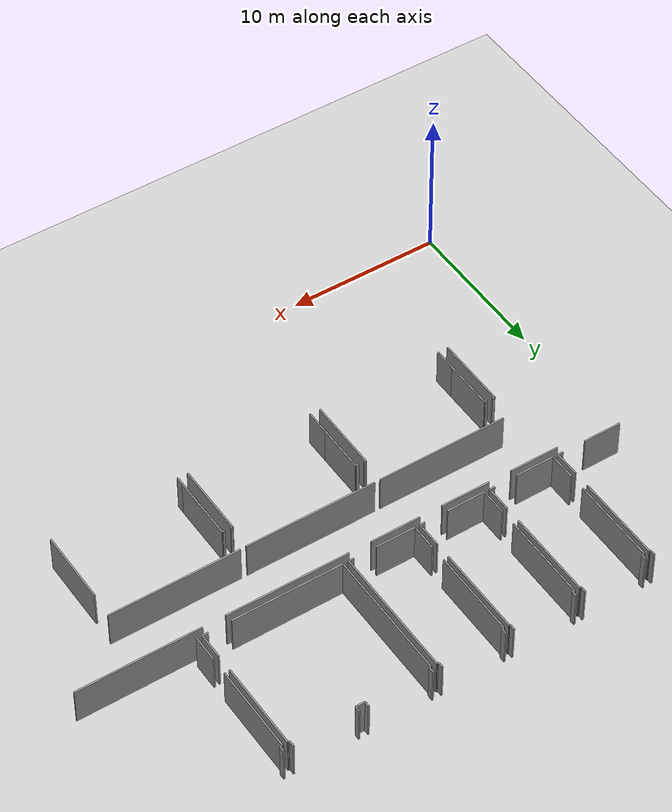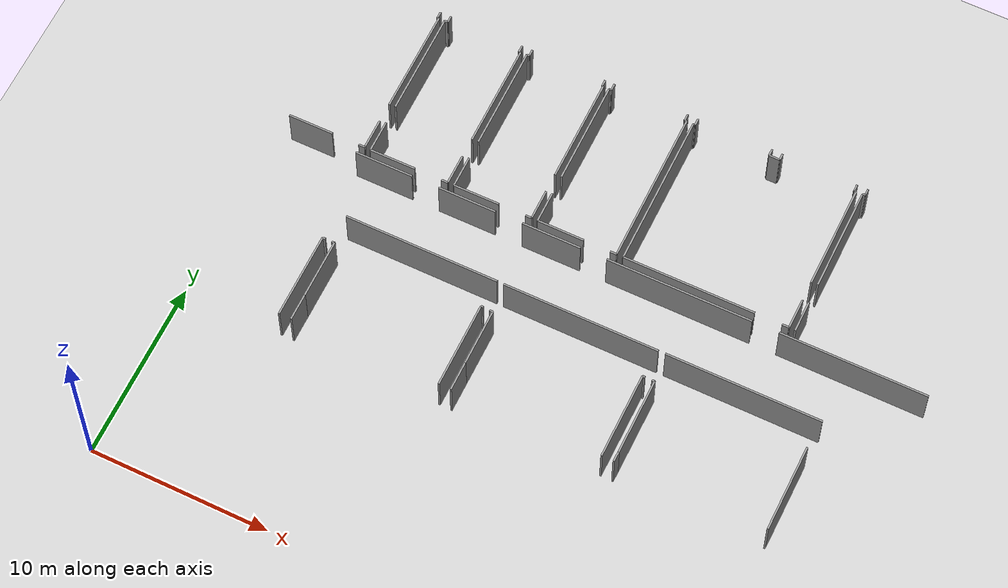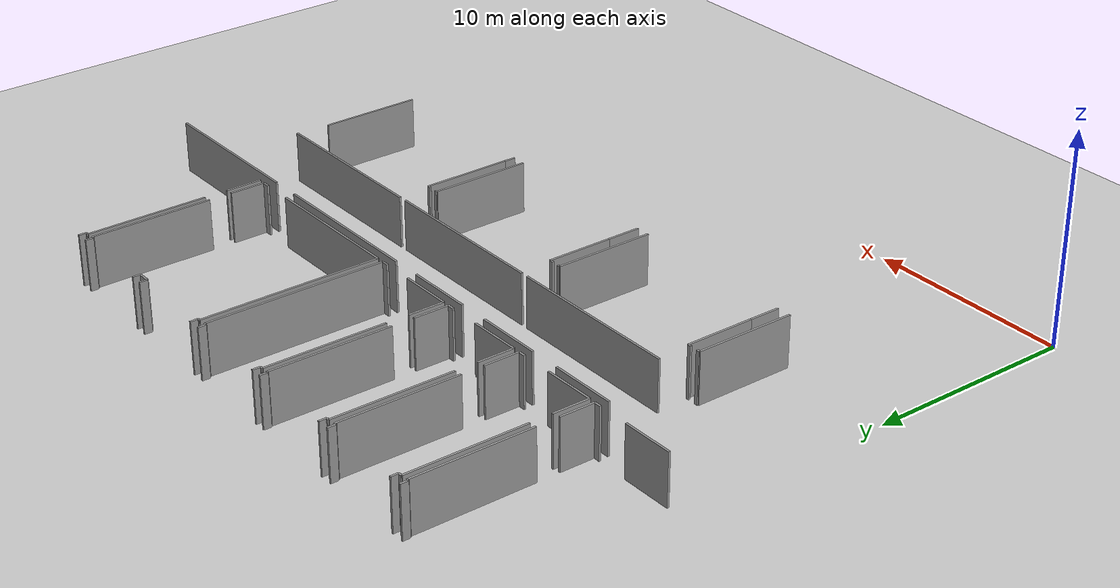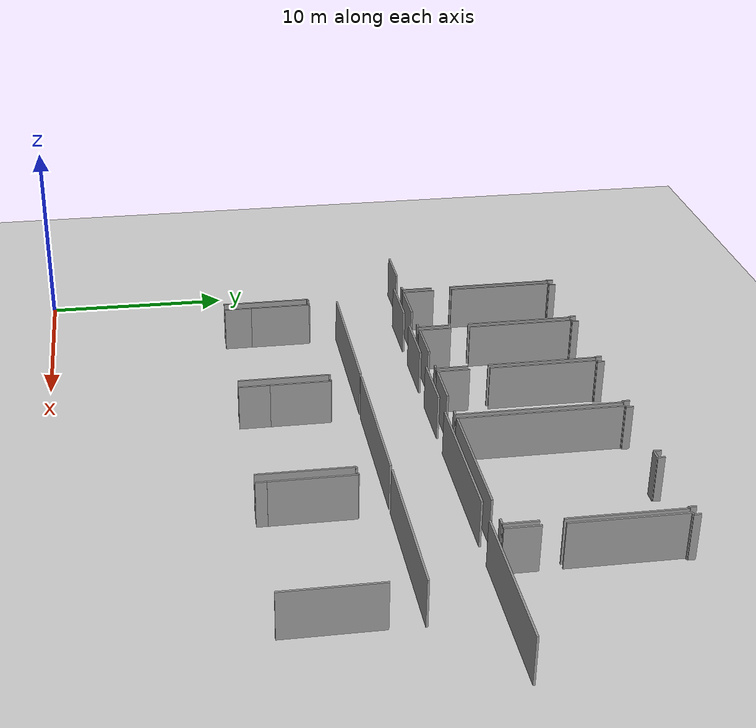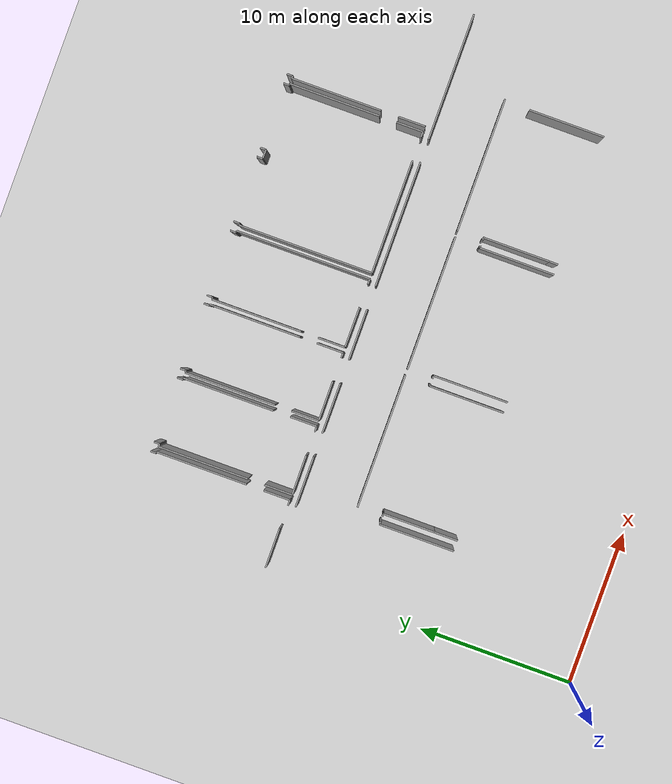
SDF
<sdf version="1.6">
 <world name="default">
  <model name="ground_plane">
   <static>1</static>
   <link name="link">
    <collision name="collision">
     <geometry><plane><normal>0 0 1</normal><size>100 100</size></plane></geometry>
     <surface><friction><ode><mu>100</mu><mu2>50</mu2></ode></friction></surface>
    </collision>
    <visual name="visual">
     <cast_shadows>0</cast_shadows>
     <geometry><plane><normal>0 0 1</normal><size>100 100</size></plane></geometry>
     <material>
      <script><uri>file://media/materials/scripts/gazebo.material</uri><name>Gazebo/Grey</name></script>
     </material>
    </visual>
   </link>
  </model>
  <model name="50010535_PLAN1">
   <static>1</static>
   <link name="Wall_320">
    <collision name="Wall_320_Collision">
     <geometry><box><size>0.16823059281 0.1 2.5</size></box></geometry>
     <pose>0.0841152964048 0 1.25 0 0 0</pose>
    </collision>
    <visual name="Wall_320_Visual">
     <pose>0.0841152964048 0 1.25 0 0 0</pose>
     <geometry><box><size>0.16823059281 0.1 2.5</size></box></geometry>
     <material>
      <script><uri>file://media/materials/scripts/gazebo.material</uri><name>Gazebo/Grey</name></script>
      <ambient>1 1 1 1</ambient>
     </material>
    </visual>
    <pose>108.410386079 -14.7562625871 0 0 0 3.14159265359</pose>
   </link>
   <link name="Wall_321">
    <collision name="Wall_321_Collision">
     <geometry><box><size>4.83955197804 0.1 2.5</size></box></geometry>
     <pose>2.41977598902 0 1.25 0 0 0</pose>
    </collision>
    <visual name="Wall_321_Visual">
     <pose>2.41977598902 0 1.25 0 0 0</pose>
     <geometry><box><size>4.83955197804 0.1 2.5</size></box></geometry>
     <material>
      <script><uri>file://media/materials/scripts/gazebo.material</uri><name>Gazebo/Grey</name></script>
      <ambient>1 1 1 1</ambient>
     </material>
    </visual>
    <pose>108.242155486 -14.7562625871 0 0 0 -1.57079632679</pose>
   </link>
   <link name="Wall_323">
    <collision name="Wall_323_Collision">
     <geometry><box><size>3.33513338373 0.1 2.5</size></box></geometry>
     <pose>1.66756669187 0 1.25 0 0 0</pose>
    </collision>
    <visual name="Wall_323_Visual">
     <pose>1.66756669187 0 1.25 0 0 0</pose>
     <geometry><box><size>3.33513338373 0.1 2.5</size></box></geometry>
     <material>
      <script><uri>file://media/materials/scripts/gazebo.material</uri><name>Gazebo/Grey</name></script>
      <ambient>1 1 1 1</ambient>
     </material>
    </visual>
    <pose>108.931595967 -18.0926665947 0 0 0 1.57079632679</pose>
   </link>
   <link name="Wall_324">
    <collision name="Wall_324_Collision">
     <geometry><box><size>0.161623348983 0.1 2.5</size></box></geometry>
     <pose>0.0808116744916 0 1.25 0 0 0</pose>
    </collision>
    <visual name="Wall_324_Visual">
     <pose>0.0808116744916 0 1.25 0 0 0</pose>
     <geometry><box><size>0.161623348983 0.1 2.5</size></box></geometry>
     <material>
      <script><uri>file://media/materials/scripts/gazebo.material</uri><name>Gazebo/Grey</name></script>
      <ambient>1 1 1 1</ambient>
     </material>
    </visual>
    <pose>108.931595967 -14.7575332109 0 0 0 3.14159265359</pose>
   </link>
   <link name="Wall_325">
    <collision name="Wall_325_Collision">
     <geometry><box><size>8.62778981341 0.1 2.5</size></box></geometry>
     <pose>4.3138949067 0 1.25 0 0 0</pose>
    </collision>
    <visual name="Wall_325_Visual">
     <pose>4.3138949067 0 1.25 0 0 0</pose>
     <geometry><box><size>8.62778981341 0.1 2.5</size></box></geometry>
     <material>
      <script><uri>file://media/materials/scripts/gazebo.material</uri><name>Gazebo/Grey</name></script>
      <ambient>1 1 1 1</ambient>
     </material>
    </visual>
    <pose>108.769972618 -13.1230027382 0 0 0 0.0</pose>
   </link>
   <link name="Wall_326">
    <collision name="Wall_326_Collision">
     <geometry><box><size>0.129857753664 0.1 2.5</size></box></geometry>
     <pose>0.0649288768321 0 1.25 0 0 0</pose>
    </collision>
    <visual name="Wall_326_Visual">
     <pose>0.0649288768321 0 1.25 0 0 0</pose>
     <geometry><box><size>0.129857753664 0.1 2.5</size></box></geometry>
     <material>
      <script><uri>file://media/materials/scripts/gazebo.material</uri><name>Gazebo/Grey</name></script>
      <ambient>1 1 1 1</ambient>
     </material>
    </visual>
    <pose>117.397762431 -14.7524507157 0 0 0 3.14159265359</pose>
   </link>
   <link name="Wall_327">
    <collision name="Wall_327_Collision">
     <geometry><box><size>4.83624835613 0.1 2.5</size></box></geometry>
     <pose>2.41812417807 0 1.25 0 0 0</pose>
    </collision>
    <visual name="Wall_327_Visual">
     <pose>2.41812417807 0 1.25 0 0 0</pose>
     <geometry><box><size>4.83624835613 0.1 2.5</size></box></geometry>
     <material>
      <script><uri>file://media/materials/scripts/gazebo.material</uri><name>Gazebo/Grey</name></script>
      <ambient>1 1 1 1</ambient>
     </material>
    </visual>
    <pose>117.267904678 -14.7524507157 0 0 0 -1.57079632679</pose>
   </link>
   <link name="Wall_328">
    <collision name="Wall_328_Collision">
     <geometry><box><size>1.49603670752 0.1 2.5</size></box></geometry>
     <pose>0.748018353758 0 1.25 0 0 0</pose>
    </collision>
    <visual name="Wall_328_Visual">
     <pose>0.748018353758 0 1.25 0 0 0</pose>
     <geometry><box><size>1.49603670752 0.1 2.5</size></box></geometry>
     <material>
      <script><uri>file://media/materials/scripts/gazebo.material</uri><name>Gazebo/Grey</name></script>
      <ambient>1 1 1 1</ambient>
     </material>
    </visual>
    <pose>108.92803822 -19.5886990718 0 0 0 1.56841820999</pose>
   </link>
   <link name="Wall_329">
    <collision name="Wall_329_Collision">
     <geometry><box><size>3.18570802335 0.1 2.5</size></box></geometry>
     <pose>1.59285401168 0 1.25 0 0 0</pose>
    </collision>
    <visual name="Wall_329_Visual">
     <pose>1.59285401168 0 1.25 0 0 0</pose>
     <geometry><box><size>3.18570802335 0.1 2.5</size></box></geometry>
     <material>
      <script><uri>file://media/materials/scripts/gazebo.material</uri><name>Gazebo/Grey</name></script>
      <ambient>1 1 1 1</ambient>
     </material>
    </visual>
    <pose>117.943622421 -17.961792342 0 0 0 1.57079632679</pose>
   </link>
   <link name="Wall_330">
    <collision name="Wall_330_Collision">
     <geometry><box><size>0.190339447152 0.1 2.5</size></box></geometry>
     <pose>0.0951697235758 0 1.25 0 0 0</pose>
    </collision>
    <visual name="Wall_330_Visual">
     <pose>0.0951697235758 0 1.25 0 0 0</pose>
     <geometry><box><size>0.190339447152 0.1 2.5</size></box></geometry>
     <material>
      <script><uri>file://media/materials/scripts/gazebo.material</uri><name>Gazebo/Grey</name></script>
      <ambient>1 1 1 1</ambient>
     </material>
    </visual>
    <pose>117.943622421 -14.7760843186 0 0 0 3.14159265359</pose>
   </link>
   <link name="Wall_331">
    <collision name="Wall_331_Collision">
     <geometry><box><size>8.66387552969 0.1 2.5</size></box></geometry>
     <pose>4.33193776485 0 1.25 0 0 0</pose>
    </collision>
    <visual name="Wall_331_Visual">
     <pose>4.33193776485 0 1.25 0 0 0</pose>
     <geometry><box><size>8.66387552969 0.1 2.5</size></box></geometry>
     <material>
      <script><uri>file://media/materials/scripts/gazebo.material</uri><name>Gazebo/Grey</name></script>
      <ambient>1 1 1 1</ambient>
     </material>
    </visual>
    <pose>117.753282974 -13.1283393582 0 0 0 0.0</pose>
   </link>
   <link name="Wall_332">
    <collision name="Wall_332_Collision">
     <geometry><box><size>0.141547492742 0.1 2.5</size></box></geometry>
     <pose>0.0707737463708 0 1.25 0 0 0</pose>
    </collision>
    <visual name="Wall_332_Visual">
     <pose>0.0707737463708 0 1.25 0 0 0</pose>
     <geometry><box><size>0.141547492742 0.1 2.5</size></box></geometry>
     <material>
      <script><uri>file://media/materials/scripts/gazebo.material</uri><name>Gazebo/Grey</name></script>
      <ambient>1 1 1 1</ambient>
     </material>
    </visual>
    <pose>126.417158504 -14.7552460881 0 0 0 3.14159265359</pose>
   </link>
   <link name="Wall_333">
    <collision name="Wall_333_Collision">
     <geometry><box><size>4.85047934283 0.1 2.5</size></box></geometry>
     <pose>2.42523967142 0 1.25 0 0 0</pose>
    </collision>
    <visual name="Wall_333_Visual">
     <pose>2.42523967142 0 1.25 0 0 0</pose>
     <geometry><box><size>4.85047934283 0.1 2.5</size></box></geometry>
     <material>
      <script><uri>file://media/materials/scripts/gazebo.material</uri><name>Gazebo/Grey</name></script>
      <ambient>1 1 1 1</ambient>
     </material>
    </visual>
    <pose>126.275611011 -14.7552460881 0 0 0 -1.57079632679</pose>
   </link>
   <link name="Wall_334">
    <collision name="Wall_334_Collision">
     <geometry><box><size>1.64393357999 0.1 2.5</size></box></geometry>
     <pose>0.821966789997 0 1.25 0 0 0</pose>
    </collision>
    <visual name="Wall_334_Visual">
     <pose>0.821966789997 0 1.25 0 0 0</pose>
     <geometry><box><size>1.64393357999 0.1 2.5</size></box></geometry>
     <material>
      <script><uri>file://media/materials/scripts/gazebo.material</uri><name>Gazebo/Grey</name></script>
      <ambient>1 1 1 1</ambient>
     </material>
    </visual>
    <pose>117.942351798 -19.6057254309 0 0 0 1.57002340996</pose>
   </link>
   <link name="Wall_335">
    <collision name="Wall_335_Collision">
     <geometry><box><size>4.30258635477 0.1 2.5</size></box></geometry>
     <pose>2.15129317739 0 1.25 0 0 0</pose>
    </collision>
    <visual name="Wall_335_Visual">
     <pose>2.15129317739 0 1.25 0 0 0</pose>
     <geometry><box><size>4.30258635477 0.1 2.5</size></box></geometry>
     <material>
      <script><uri>file://media/materials/scripts/gazebo.material</uri><name>Gazebo/Grey</name></script>
      <ambient>1 1 1 1</ambient>
     </material>
    </visual>
    <pose>126.952091129 -19.06088194 0 0 0 1.57079632679</pose>
   </link>
   <link name="Wall_336">
    <collision name="Wall_336_Collision">
     <geometry><box><size>0.158065602307 0.1 2.5</size></box></geometry>
     <pose>0.0790328011537 0 1.25 0 0 0</pose>
    </collision>
    <visual name="Wall_336_Visual">
     <pose>0.0790328011537 0 1.25 0 0 0</pose>
     <geometry><box><size>0.158065602307 0.1 2.5</size></box></geometry>
     <material>
      <script><uri>file://media/materials/scripts/gazebo.material</uri><name>Gazebo/Grey</name></script>
      <ambient>1 1 1 1</ambient>
     </material>
    </visual>
    <pose>126.952091129 -14.7582955852 0 0 0 3.14159265359</pose>
   </link>
   <link name="Wall_337">
    <collision name="Wall_337_Collision">
     <geometry><box><size>8.6033938362 0.1 2.5</size></box></geometry>
     <pose>4.3016969181 0 1.25 0 0 0</pose>
    </collision>
    <visual name="Wall_337_Visual">
     <pose>4.3016969181 0 1.25 0 0 0</pose>
     <geometry><box><size>8.6033938362 0.1 2.5</size></box></geometry>
     <material>
      <script><uri>file://media/materials/scripts/gazebo.material</uri><name>Gazebo/Grey</name></script>
      <ambient>1 1 1 1</ambient>
     </material>
    </visual>
    <pose>126.794025527 -13.1214779896 0 0 0 0.0</pose>
   </link>
   <link name="Wall_339">
    <collision name="Wall_339_Collision">
     <geometry><box><size>4.8690304505 0.1 2.5</size></box></geometry>
     <pose>2.43451522525 0 1.25 0 0 0</pose>
    </collision>
    <visual name="Wall_339_Visual">
     <pose>2.43451522525 0 1.25 0 0 0</pose>
     <geometry><box><size>4.8690304505 0.1 2.5</size></box></geometry>
     <material>
      <script><uri>file://media/materials/scripts/gazebo.material</uri><name>Gazebo/Grey</name></script>
      <ambient>1 1 1 1</ambient>
     </material>
    </visual>
    <pose>135.273406479 -14.7501635928 0 0 0 -1.57079632679</pose>
   </link>
   <link name="Wall_340">
    <collision name="Wall_340_Collision">
     <geometry><box><size>0.558357443729 0.1 2.5</size></box></geometry>
     <pose>0.279178721864 0 1.25 0 0 0</pose>
    </collision>
    <visual name="Wall_340_Visual">
     <pose>0.279178721864 0 1.25 0 0 0</pose>
     <geometry><box><size>0.558357443729 0.1 2.5</size></box></geometry>
     <material>
      <script><uri>file://media/materials/scripts/gazebo.material</uri><name>Gazebo/Grey</name></script>
      <ambient>1 1 1 1</ambient>
     </material>
    </visual>
    <pose>126.944975636 -19.6191940433 0 0 0 1.55805236495</pose>
   </link>
   <link name="Wall_507">
    <collision name="Wall_507_Collision">
     <geometry><box><size>0.369497404751 0.1 2.5</size></box></geometry>
     <pose>0.184748702375 0 1.25 0 0 0</pose>
    </collision>
    <visual name="Wall_507_Visual">
     <pose>0.184748702375 0 1.25 0 0 0</pose>
     <geometry><box><size>0.369497404751 0.1 2.5</size></box></geometry>
     <material>
      <script><uri>file://media/materials/scripts/gazebo.material</uri><name>Gazebo/Grey</name></script>
      <ambient>1 1 1 1</ambient>
     </material>
    </visual>
    <pose>107.695787247 -0.0238877276799 0 0 0 -1.57079632679</pose>
   </link>
   <link name="Wall_508">
    <collision name="Wall_508_Collision">
     <geometry><box><size>0.0825905478295 0.1 2.5</size></box></geometry>
     <pose>0.0412952739147 0 1.25 0 0 0</pose>
    </collision>
    <visual name="Wall_508_Visual">
     <pose>0.0412952739147 0 1.25 0 0 0</pose>
     <geometry><box><size>0.0825905478295 0.1 2.5</size></box></geometry>
     <material>
      <script><uri>file://media/materials/scripts/gazebo.material</uri><name>Gazebo/Grey</name></script>
      <ambient>1 1 1 1</ambient>
     </material>
    </visual>
    <pose>107.695787247 -0.393385132431 0 0 0 0.0</pose>
   </link>
   <link name="Wall_509">
    <collision name="Wall_509_Collision">
     <geometry><box><size>5.86342064637 0.1 2.5</size></box></geometry>
     <pose>2.93171032318 0 1.25 0 0 0</pose>
    </collision>
    <visual name="Wall_509_Visual">
     <pose>2.93171032318 0 1.25 0 0 0</pose>
     <geometry><box><size>5.86342064637 0.1 2.5</size></box></geometry>
     <material>
      <script><uri>file://media/materials/scripts/gazebo.material</uri><name>Gazebo/Grey</name></script>
      <ambient>1 1 1 1</ambient>
     </material>
    </visual>
    <pose>107.778377795 -0.393385132431 0 0 0 -1.57079632679</pose>
   </link>
   <link name="Wall_510">
    <collision name="Wall_510_Collision">
     <geometry><box><size>1.71153027579 0.1 2.5</size></box></geometry>
     <pose>0.855765137894 0 1.25 0 0 0</pose>
    </collision>
    <visual name="Wall_510_Visual">
     <pose>0.855765137894 0 1.25 0 0 0</pose>
     <geometry><box><size>1.71153027579 0.1 2.5</size></box></geometry>
     <material>
      <script><uri>file://media/materials/scripts/gazebo.material</uri><name>Gazebo/Grey</name></script>
      <ambient>1 1 1 1</ambient>
     </material>
    </visual>
    <pose>107.778377795 -7.36529799305 0 0 0 -1.57079632679</pose>
   </link>
   <link name="Wall_511">
    <collision name="Wall_511_Collision">
     <geometry><box><size>0.347896799934 0.1 2.5</size></box></geometry>
     <pose>0.173948399967 0 1.25 0 0 0</pose>
    </collision>
    <visual name="Wall_511_Visual">
     <pose>0.173948399967 0 1.25 0 0 0</pose>
     <geometry><box><size>0.347896799934 0.1 2.5</size></box></geometry>
     <material>
      <script><uri>file://media/materials/scripts/gazebo.material</uri><name>Gazebo/Grey</name></script>
      <ambient>1 1 1 1</ambient>
     </material>
    </visual>
    <pose>107.778377795 -9.07682826884 0 0 0 3.14159265359</pose>
   </link>
   <link name="Wall_512">
    <collision name="Wall_512_Collision">
     <geometry><box><size>2.51787681653 0.1 2.5</size></box></geometry>
     <pose>1.25893840826 0 1.25 0 0 0</pose>
    </collision>
    <visual name="Wall_512_Visual">
     <pose>1.25893840826 0 1.25 0 0 0</pose>
     <geometry><box><size>2.51787681653 0.1 2.5</size></box></geometry>
     <material>
      <script><uri>file://media/materials/scripts/gazebo.material</uri><name>Gazebo/Grey</name></script>
      <ambient>1 1 1 1</ambient>
     </material>
    </visual>
    <pose>105.893534431 -9.07682826884 0 0 0 -3.13896851751</pose>
   </link>
   <link name="Wall_513">
    <collision name="Wall_513_Collision">
     <geometry><box><size>1.80504818841 0.1 2.5</size></box></geometry>
     <pose>0.902524094204 0 1.25 0 0 0</pose>
    </collision>
    <visual name="Wall_513_Visual">
     <pose>0.902524094204 0 1.25 0 0 0</pose>
     <geometry><box><size>1.80504818841 0.1 2.5</size></box></geometry>
     <material>
      <script><uri>file://media/materials/scripts/gazebo.material</uri><name>Gazebo/Grey</name></script>
      <ambient>1 1 1 1</ambient>
     </material>
    </visual>
    <pose>108.119159101 -9.10071599652 0 0 0 1.57079632679</pose>
   </link>
   <link name="Wall_514">
    <collision name="Wall_514_Collision">
     <geometry><box><size>5.82987617771 0.1 2.5</size></box></geometry>
     <pose>2.91493808885 0 1.25 0 0 0</pose>
    </collision>
    <visual name="Wall_514_Visual">
     <pose>2.91493808885 0 1.25 0 0 0</pose>
     <geometry><box><size>5.82987617771 0.1 2.5</size></box></geometry>
     <material>
      <script><uri>file://media/materials/scripts/gazebo.material</uri><name>Gazebo/Grey</name></script>
      <ambient>1 1 1 1</ambient>
     </material>
    </visual>
    <pose>108.119159101 -6.22402368443 0 0 0 1.57079632679</pose>
   </link>
   <link name="Wall_515">
    <collision name="Wall_515_Collision">
     <geometry><box><size>0.185256951901 0.1 2.5</size></box></geometry>
     <pose>0.0926284759503 0 1.25 0 0 0</pose>
    </collision>
    <visual name="Wall_515_Visual">
     <pose>0.0926284759503 0 1.25 0 0 0</pose>
     <geometry><box><size>0.185256951901 0.1 2.5</size></box></geometry>
     <material>
      <script><uri>file://media/materials/scripts/gazebo.material</uri><name>Gazebo/Grey</name></script>
      <ambient>1 1 1 1</ambient>
     </material>
    </visual>
    <pose>108.119159101 -0.394147506718 0 0 0 0.0</pose>
   </link>
   <link name="Wall_516">
    <collision name="Wall_516_Collision">
     <geometry><box><size>0.375088149527 0.1 2.5</size></box></geometry>
     <pose>0.187544074764 0 1.25 0 0 0</pose>
    </collision>
    <visual name="Wall_516_Visual">
     <pose>0.187544074764 0 1.25 0 0 0</pose>
     <geometry><box><size>0.375088149527 0.1 2.5</size></box></geometry>
     <material>
      <script><uri>file://media/materials/scripts/gazebo.material</uri><name>Gazebo/Grey</name></script>
      <ambient>1 1 1 1</ambient>
     </material>
    </visual>
    <pose>108.304416053 -0.394147506718 0 0 0 1.57079632679</pose>
   </link>
   <link name="Wall_517">
    <collision name="Wall_517_Collision">
     <geometry><box><size>0.380170644778 0.1 2.5</size></box></geometry>
     <pose>0.190085322389 0 1.25 0 0 0</pose>
    </collision>
    <visual name="Wall_517_Visual">
     <pose>0.190085322389 0 1.25 0 0 0</pose>
     <geometry><box><size>0.380170644778 0.1 2.5</size></box></geometry>
     <material>
      <script><uri>file://media/materials/scripts/gazebo.material</uri><name>Gazebo/Grey</name></script>
      <ambient>1 1 1 1</ambient>
     </material>
    </visual>
    <pose>112.495441637 -0.0190593571914 0 0 0 -1.57079632679</pose>
   </link>
   <link name="Wall_518">
    <collision name="Wall_518_Collision">
     <geometry><box><size>0.0968215345324 0.1 2.5</size></box></geometry>
     <pose>0.0484107672662 0 1.25 0 0 0</pose>
    </collision>
    <visual name="Wall_518_Visual">
     <pose>0.0484107672662 0 1.25 0 0 0</pose>
     <geometry><box><size>0.0968215345324 0.1 2.5</size></box></geometry>
     <material>
      <script><uri>file://media/materials/scripts/gazebo.material</uri><name>Gazebo/Grey</name></script>
      <ambient>1 1 1 1</ambient>
     </material>
    </visual>
    <pose>112.495441637 -0.399230001969 0 0 0 0.0</pose>
   </link>
   <link name="Wall_519">
    <collision name="Wall_519_Collision">
     <geometry><box><size>5.86291239684 0.1 2.5</size></box></geometry>
     <pose>2.93145619842 0 1.25 0 0 0</pose>
    </collision>
    <visual name="Wall_519_Visual">
     <pose>2.93145619842 0 1.25 0 0 0</pose>
     <geometry><box><size>5.86291239684 0.1 2.5</size></box></geometry>
     <material>
      <script><uri>file://media/materials/scripts/gazebo.material</uri><name>Gazebo/Grey</name></script>
      <ambient>1 1 1 1</ambient>
     </material>
    </visual>
    <pose>112.592263172 -0.399230001969 0 0 0 -1.57079632679</pose>
   </link>
   <link name="Wall_520">
    <collision name="Wall_520_Collision">
     <geometry><box><size>1.71915401867 0.1 2.5</size></box></geometry>
     <pose>0.859577009333 0 1.25 0 0 0</pose>
    </collision>
    <visual name="Wall_520_Visual">
     <pose>0.859577009333 0 1.25 0 0 0</pose>
     <geometry><box><size>1.71915401867 0.1 2.5</size></box></geometry>
     <material>
      <script><uri>file://media/materials/scripts/gazebo.material</uri><name>Gazebo/Grey</name></script>
      <ambient>1 1 1 1</ambient>
     </material>
    </visual>
    <pose>112.592263172 -7.36733099115 0 0 0 -1.57079632679</pose>
   </link>
   <link name="Wall_521">
    <collision name="Wall_521_Collision">
     <geometry><box><size>0.363906659975 0.1 2.5</size></box></geometry>
     <pose>0.181953329987 0 1.25 0 0 0</pose>
    </collision>
    <visual name="Wall_521_Visual">
     <pose>0.181953329987 0 1.25 0 0 0</pose>
     <geometry><box><size>0.363906659975 0.1 2.5</size></box></geometry>
     <material>
      <script><uri>file://media/materials/scripts/gazebo.material</uri><name>Gazebo/Grey</name></script>
      <ambient>1 1 1 1</ambient>
     </material>
    </visual>
    <pose>112.592263172 -9.08648500982 0 0 0 3.14159265359</pose>
   </link>
   <link name="Wall_522">
    <collision name="Wall_522_Collision">
     <geometry><box><size>2.57762675125 0.1 2.5</size></box></geometry>
     <pose>1.28881337563 0 1.25 0 0 0</pose>
    </collision>
    <visual name="Wall_522_Visual">
     <pose>1.28881337563 0 1.25 0 0 0</pose>
     <geometry><box><size>2.57762675125 0.1 2.5</size></box></geometry>
     <material>
      <script><uri>file://media/materials/scripts/gazebo.material</uri><name>Gazebo/Grey</name></script>
      <ambient>1 1 1 1</ambient>
     </material>
    </visual>
    <pose>110.696746568 -9.08648500982 0 0 0 -3.13607166069</pose>
   </link>
   <link name="Wall_523">
    <collision name="Wall_523_Collision">
     <geometry><box><size>1.77734858929 0.1 2.5</size></box></geometry>
     <pose>0.888674294645 0 1.25 0 0 0</pose>
    </collision>
    <visual name="Wall_523_Visual">
     <pose>0.888674294645 0 1.25 0 0 0</pose>
     <geometry><box><size>1.77734858929 0.1 2.5</size></box></geometry>
     <material>
      <script><uri>file://media/materials/scripts/gazebo.material</uri><name>Gazebo/Grey</name></script>
      <ambient>1 1 1 1</ambient>
     </material>
    </visual>
    <pose>112.948800213 -9.0872473841 0 0 0 1.57079632679</pose>
   </link>
   <link name="Wall_524">
    <collision name="Wall_524_Collision">
     <geometry><box><size>5.84461541394 0.1 2.5</size></box></geometry>
     <pose>2.92230770697 0 1.25 0 0 0</pose>
    </collision>
    <visual name="Wall_524_Visual">
     <pose>2.92230770697 0 1.25 0 0 0</pose>
     <geometry><box><size>5.84461541394 0.1 2.5</size></box></geometry>
     <material>
      <script><uri>file://media/materials/scripts/gazebo.material</uri><name>Gazebo/Grey</name></script>
      <ambient>1 1 1 1</ambient>
     </material>
    </visual>
    <pose>112.948800213 -6.2296144292 0 0 0 1.57079632679</pose>
   </link>
   <link name="Wall_525">
    <collision name="Wall_525_Collision">
     <geometry><box><size>0.138497995591 0.1 2.5</size></box></geometry>
     <pose>0.0692489977955 0 1.25 0 0 0</pose>
    </collision>
    <visual name="Wall_525_Visual">
     <pose>0.0692489977955 0 1.25 0 0 0</pose>
     <geometry><box><size>0.138497995591 0.1 2.5</size></box></geometry>
     <material>
      <script><uri>file://media/materials/scripts/gazebo.material</uri><name>Gazebo/Grey</name></script>
      <ambient>1 1 1 1</ambient>
     </material>
    </visual>
    <pose>112.948800213 -0.384999015267 0 0 0 0.0</pose>
   </link>
   <link name="Wall_526">
    <collision name="Wall_526_Collision">
     <geometry><box><size>0.371530402851 0.1 2.5</size></box></geometry>
     <pose>0.185765201426 0 1.25 0 0 0</pose>
    </collision>
    <visual name="Wall_526_Visual">
     <pose>0.185765201426 0 1.25 0 0 0</pose>
     <geometry><box><size>0.371530402851 0.1 2.5</size></box></geometry>
     <material>
      <script><uri>file://media/materials/scripts/gazebo.material</uri><name>Gazebo/Grey</name></script>
      <ambient>1 1 1 1</ambient>
     </material>
    </visual>
    <pose>113.087298209 -0.384999015267 0 0 0 1.57079632679</pose>
   </link>
   <link name="Wall_527">
    <collision name="Wall_527_Collision">
     <geometry><box><size>0.371784527614 0.1 2.5</size></box></geometry>
     <pose>0.185892263807 0 1.25 0 0 0</pose>
    </collision>
    <visual name="Wall_527_Visual">
     <pose>0.185892263807 0 1.25 0 0 0</pose>
     <geometry><box><size>0.371784527614 0.1 2.5</size></box></geometry>
     <material>
      <script><uri>file://media/materials/scripts/gazebo.material</uri><name>Gazebo/Grey</name></script>
      <ambient>1 1 1 1</ambient>
     </material>
    </visual>
    <pose>117.327623997 -0.0134686124153 0 0 0 -1.57079632679</pose>
   </link>
   <link name="Wall_528">
    <collision name="Wall_528_Collision">
     <geometry><box><size>0.0620064420627 0.1 2.5</size></box></geometry>
     <pose>0.0310032210314 0 1.25 0 0 0</pose>
    </collision>
    <visual name="Wall_528_Visual">
     <pose>0.0310032210314 0 1.25 0 0 0</pose>
     <geometry><box><size>0.0620064420627 0.1 2.5</size></box></geometry>
     <material>
      <script><uri>file://media/materials/scripts/gazebo.material</uri><name>Gazebo/Grey</name></script>
      <ambient>1 1 1 1</ambient>
     </material>
    </visual>
    <pose>117.327623997 -0.385253140029 0 0 0 0.0</pose>
   </link>
   <link name="Wall_529">
    <collision name="Wall_529_Collision">
     <geometry><box><size>5.88146350451 0.1 2.5</size></box></geometry>
     <pose>2.94073175225 0 1.25 0 0 0</pose>
    </collision>
    <visual name="Wall_529_Visual">
     <pose>2.94073175225 0 1.25 0 0 0</pose>
     <geometry><box><size>5.88146350451 0.1 2.5</size></box></geometry>
     <material>
      <script><uri>file://media/materials/scripts/gazebo.material</uri><name>Gazebo/Grey</name></script>
      <ambient>1 1 1 1</ambient>
     </material>
    </visual>
    <pose>117.389630439 -0.385253140029 0 0 0 -1.57079632679</pose>
   </link>
   <link name="Wall_530">
    <collision name="Wall_530_Collision">
     <geometry><box><size>1.72626951202 0.1 2.5</size></box></geometry>
     <pose>0.863134756008 0 1.25 0 0 0</pose>
    </collision>
    <visual name="Wall_530_Visual">
     <pose>0.863134756008 0 1.25 0 0 0</pose>
     <geometry><box><size>1.72626951202 0.1 2.5</size></box></geometry>
     <material>
      <script><uri>file://media/materials/scripts/gazebo.material</uri><name>Gazebo/Grey</name></script>
      <ambient>1 1 1 1</ambient>
     </material>
    </visual>
    <pose>117.389630439 -7.34471388728 0 0 0 -1.57079632679</pose>
   </link>
   <link name="Wall_531">
    <collision name="Wall_531_Collision">
     <geometry><box><size>0.342814304683 0.1 2.5</size></box></geometry>
     <pose>0.171407152341 0 1.25 0 0 0</pose>
    </collision>
    <visual name="Wall_531_Visual">
     <pose>0.171407152341 0 1.25 0 0 0</pose>
     <geometry><box><size>0.342814304683 0.1 2.5</size></box></geometry>
     <material>
      <script><uri>file://media/materials/scripts/gazebo.material</uri><name>Gazebo/Grey</name></script>
      <ambient>1 1 1 1</ambient>
     </material>
    </visual>
    <pose>117.389630439 -9.0709833993 0 0 0 3.14159265359</pose>
   </link>
   <link name="Wall_532">
    <collision name="Wall_532_Collision">
     <geometry><box><size>2.56696575038 0.1 2.5</size></box></geometry>
     <pose>1.28348287519 0 1.25 0 0 0</pose>
    </collision>
    <visual name="Wall_532_Visual">
     <pose>1.28348287519 0 1.25 0 0 0</pose>
     <geometry><box><size>2.56696575038 0.1 2.5</size></box></geometry>
     <material>
      <script><uri>file://media/materials/scripts/gazebo.material</uri><name>Gazebo/Grey</name></script>
      <ambient>1 1 1 1</ambient>
     </material>
    </visual>
    <pose>115.51571444 -9.0709833993 0 0 0 -3.13525673204</pose>
   </link>
   <link name="Wall_533">
    <collision name="Wall_533_Collision">
     <geometry><box><size>1.7501572397 0.1 2.5</size></box></geometry>
     <pose>0.875078619848 0 1.25 0 0 0</pose>
    </collision>
    <visual name="Wall_533_Visual">
     <pose>0.875078619848 0 1.25 0 0 0</pose>
     <geometry><box><size>1.7501572397 0.1 2.5</size></box></geometry>
     <material>
      <script><uri>file://media/materials/scripts/gazebo.material</uri><name>Gazebo/Grey</name></script>
      <ambient>1 1 1 1</ambient>
     </material>
    </visual>
    <pose>117.730157621 -9.06996690025 0 0 0 1.57079632679</pose>
   </link>
   <link name="Wall_534">
    <collision name="Wall_534_Collision">
     <geometry><box><size>5.83317979962 0.1 2.5</size></box></geometry>
     <pose>2.91658989981 0 1.25 0 0 0</pose>
    </collision>
    <visual name="Wall_534_Visual">
     <pose>2.91658989981 0 1.25 0 0 0</pose>
     <geometry><box><size>5.83317979962 0.1 2.5</size></box></geometry>
     <material>
      <script><uri>file://media/materials/scripts/gazebo.material</uri><name>Gazebo/Grey</name></script>
      <ambient>1 1 1 1</ambient>
     </material>
    </visual>
    <pose>117.730157621 -6.2316474273 0 0 0 1.57079632679</pose>
   </link>
   <link name="Wall_535">
    <collision name="Wall_535_Collision">
     <geometry><box><size>0.135194373678 0.1 2.5</size></box></geometry>
     <pose>0.0675971868389 0 1.25 0 0 0</pose>
    </collision>
    <visual name="Wall_535_Visual">
     <pose>0.0675971868389 0 1.25 0 0 0</pose>
     <geometry><box><size>0.135194373678 0.1 2.5</size></box></geometry>
     <material>
      <script><uri>file://media/materials/scripts/gazebo.material</uri><name>Gazebo/Grey</name></script>
      <ambient>1 1 1 1</ambient>
     </material>
    </visual>
    <pose>117.730157621 -0.398467627682 0 0 0 0.0</pose>
   </link>
   <link name="Wall_536">
    <collision name="Wall_536_Collision">
     <geometry><box><size>0.38830263718 0.1 2.5</size></box></geometry>
     <pose>0.19415131859 0 1.25 0 0 0</pose>
    </collision>
    <visual name="Wall_536_Visual">
     <pose>0.19415131859 0 1.25 0 0 0</pose>
     <geometry><box><size>0.38830263718 0.1 2.5</size></box></geometry>
     <material>
      <script><uri>file://media/materials/scripts/gazebo.material</uri><name>Gazebo/Grey</name></script>
      <ambient>1 1 1 1</ambient>
     </material>
    </visual>
    <pose>117.865351995 -0.398467627682 0 0 0 1.57079632679</pose>
   </link>
   <link name="Wall_537">
    <collision name="Wall_537_Collision">
     <geometry><box><size>0.37940827049 0.1 2.5</size></box></geometry>
     <pose>0.189704135245 0 1.25 0 0 0</pose>
    </collision>
    <visual name="Wall_537_Visual">
     <pose>0.189704135245 0 1.25 0 0 0</pose>
     <geometry><box><size>0.37940827049 0.1 2.5</size></box></geometry>
     <material>
      <script><uri>file://media/materials/scripts/gazebo.material</uri><name>Gazebo/Grey</name></script>
      <ambient>1 1 1 1</ambient>
     </material>
    </visual>
    <pose>122.083568928 -0.0101649905021 0 0 0 -1.57079632679</pose>
   </link>
   <link name="Wall_538">
    <collision name="Wall_538_Collision">
     <geometry><box><size>0.118676264112 0.1 2.5</size></box></geometry>
     <pose>0.0593381320559 0 1.25 0 0 0</pose>
    </collision>
    <visual name="Wall_538_Visual">
     <pose>0.0593381320559 0 1.25 0 0 0</pose>
     <geometry><box><size>0.118676264112 0.1 2.5</size></box></geometry>
     <material>
      <script><uri>file://media/materials/scripts/gazebo.material</uri><name>Gazebo/Grey</name></script>
      <ambient>1 1 1 1</ambient>
     </material>
    </visual>
    <pose>122.083568928 -0.389573260992 0 0 0 0.0</pose>
   </link>
   <link name="Wall_539">
    <collision name="Wall_539_Collision">
     <geometry><box><size>8.68674675832 0.1 2.5</size></box></geometry>
     <pose>4.34337337916 0 1.25 0 0 0</pose>
    </collision>
    <visual name="Wall_539_Visual">
     <pose>4.34337337916 0 1.25 0 0 0</pose>
     <geometry><box><size>8.68674675832 0.1 2.5</size></box></geometry>
     <material>
      <script><uri>file://media/materials/scripts/gazebo.material</uri><name>Gazebo/Grey</name></script>
      <ambient>1 1 1 1</ambient>
     </material>
    </visual>
    <pose>122.202245192 -0.389573260992 0 0 0 -1.57079632679</pose>
   </link>
   <link name="Wall_540">
    <collision name="Wall_540_Collision">
     <geometry><box><size>0.358061790436 0.1 2.5</size></box></geometry>
     <pose>0.179030895218 0 1.25 0 0 0</pose>
    </collision>
    <visual name="Wall_540_Visual">
     <pose>0.179030895218 0 1.25 0 0 0</pose>
     <geometry><box><size>0.358061790436 0.1 2.5</size></box></geometry>
     <material>
      <script><uri>file://media/materials/scripts/gazebo.material</uri><name>Gazebo/Grey</name></script>
      <ambient>1 1 1 1</ambient>
     </material>
    </visual>
    <pose>122.202245192 -9.07632001931 0 0 0 3.14159265359</pose>
   </link>
   <link name="Wall_541">
    <collision name="Wall_541_Collision">
     <geometry><box><size>2.61647626832 0.1 2.5</size></box></geometry>
     <pose>1.30823813416 0 1.25 0 0 0</pose>
    </collision>
    <visual name="Wall_541_Visual">
     <pose>1.30823813416 0 1.25 0 0 0</pose>
     <geometry><box><size>2.61647626832 0.1 2.5</size></box></geometry>
     <material>
      <script><uri>file://media/materials/scripts/gazebo.material</uri><name>Gazebo/Grey</name></script>
      <ambient>1 1 1 1</ambient>
     </material>
    </visual>
    <pose>120.346626176 -9.07632001931 0 0 0 3.13916453093</pose>
   </link>
   <link name="Wall_542">
    <collision name="Wall_542_Collision">
     <geometry><box><size>8.67302402114 0.1 2.5</size></box></geometry>
     <pose>4.33651201057 0 1.25 0 0 0</pose>
    </collision>
    <visual name="Wall_542_Visual">
     <pose>4.33651201057 0 1.25 0 0 0</pose>
     <geometry><box><size>8.67302402114 0.1 2.5</size></box></geometry>
     <material>
      <script><uri>file://media/materials/scripts/gazebo.material</uri><name>Gazebo/Grey</name></script>
      <ambient>1 1 1 1</ambient>
     </material>
    </visual>
    <pose>122.577587467 -9.07199989835 0 0 0 1.57079632679</pose>
   </link>
   <link name="Wall_543">
    <collision name="Wall_543_Collision">
     <geometry><box><size>0.109273647897 0.1 2.5</size></box></geometry>
     <pose>0.0546368239487 0 1.25 0 0 0</pose>
    </collision>
    <visual name="Wall_543_Visual">
     <pose>0.0546368239487 0 1.25 0 0 0</pose>
     <geometry><box><size>0.109273647897 0.1 2.5</size></box></geometry>
     <material>
      <script><uri>file://media/materials/scripts/gazebo.material</uri><name>Gazebo/Grey</name></script>
      <ambient>1 1 1 1</ambient>
     </material>
    </visual>
    <pose>122.577587467 -0.398975877207 0 0 0 0.0</pose>
   </link>
   <link name="Wall_544">
    <collision name="Wall_544_Collision">
     <geometry><box><size>0.394147506718 0.1 2.5</size></box></geometry>
     <pose>0.197073753359 0 1.25 0 0 0</pose>
    </collision>
    <visual name="Wall_544_Visual">
     <pose>0.197073753359 0 1.25 0 0 0</pose>
     <geometry><box><size>0.394147506718 0.1 2.5</size></box></geometry>
     <material>
      <script><uri>file://media/materials/scripts/gazebo.material</uri><name>Gazebo/Grey</name></script>
      <ambient>1 1 1 1</ambient>
     </material>
    </visual>
    <pose>122.686861114 -0.398975877207 0 0 0 1.57079632679</pose>
   </link>
   <link name="Wall_545">
    <collision name="Wall_545_Collision">
     <geometry><box><size>0.384744890504 0.1 2.5</size></box></geometry>
     <pose>0.192372445252 0 1.25 0 0 0</pose>
    </collision>
    <visual name="Wall_545_Visual">
     <pose>0.192372445252 0 1.25 0 0 0</pose>
     <geometry><box><size>0.384744890504 0.1 2.5</size></box></geometry>
     <material>
      <script><uri>file://media/materials/scripts/gazebo.material</uri><name>Gazebo/Grey</name></script>
      <ambient>1 1 1 1</ambient>
     </material>
    </visual>
    <pose>126.895167182 -0.00482837048849 0 0 0 -1.57079632679</pose>
   </link>
   <link name="Wall_546">
    <collision name="Wall_546_Collision">
     <geometry><box><size>0.593635445322 0.1 2.5</size></box></geometry>
     <pose>0.296817722661 0 1.25 0 0 0</pose>
    </collision>
    <visual name="Wall_546_Visual">
     <pose>0.296817722661 0 1.25 0 0 0</pose>
     <geometry><box><size>0.593635445322 0.1 2.5</size></box></geometry>
     <material>
      <script><uri>file://media/materials/scripts/gazebo.material</uri><name>Gazebo/Grey</name></script>
      <ambient>1 1 1 1</ambient>
     </material>
    </visual>
    <pose>126.895167182 -0.389573260992 0 0 0 0.0</pose>
   </link>
   <link name="Wall_547">
    <collision name="Wall_547_Collision">
     <geometry><box><size>0.370513903801 0.1 2.5</size></box></geometry>
     <pose>0.185256951901 0 1.25 0 0 0</pose>
    </collision>
    <visual name="Wall_547_Visual">
     <pose>0.185256951901 0 1.25 0 0 0</pose>
     <geometry><box><size>0.370513903801 0.1 2.5</size></box></geometry>
     <material>
      <script><uri>file://media/materials/scripts/gazebo.material</uri><name>Gazebo/Grey</name></script>
      <ambient>1 1 1 1</ambient>
     </material>
    </visual>
    <pose>127.488802628 -0.389573260992 0 0 0 1.57079632679</pose>
   </link>
   <link name="Wall_548">
    <collision name="Wall_548_Collision">
     <geometry><box><size>0.375088149527 0.1 2.5</size></box></geometry>
     <pose>0.187544074764 0 1.25 0 0 0</pose>
    </collision>
    <visual name="Wall_548_Visual">
     <pose>0.187544074764 0 1.25 0 0 0</pose>
     <geometry><box><size>0.375088149527 0.1 2.5</size></box></geometry>
     <material>
      <script><uri>file://media/materials/scripts/gazebo.material</uri><name>Gazebo/Grey</name></script>
      <ambient>1 1 1 1</ambient>
     </material>
    </visual>
    <pose>131.687706079 -0.0190593571914 0 0 0 -1.57079632679</pose>
   </link>
   <link name="Wall_549">
    <collision name="Wall_549_Collision">
     <geometry><box><size>0.113847893623 0.1 2.5</size></box></geometry>
     <pose>0.0569239468117 0 1.25 0 0 0</pose>
    </collision>
    <visual name="Wall_549_Visual">
     <pose>0.0569239468117 0 1.25 0 0 0</pose>
     <geometry><box><size>0.113847893623 0.1 2.5</size></box></geometry>
     <material>
      <script><uri>file://media/materials/scripts/gazebo.material</uri><name>Gazebo/Grey</name></script>
      <ambient>1 1 1 1</ambient>
     </material>
    </visual>
    <pose>131.687706079 -0.394147506718 0 0 0 0.0</pose>
   </link>
   <link name="Wall_550">
    <collision name="Wall_550_Collision">
     <geometry><box><size>5.84232829107 0.1 2.5</size></box></geometry>
     <pose>2.92116414554 0 1.25 0 0 0</pose>
    </collision>
    <visual name="Wall_550_Visual">
     <pose>2.92116414554 0 1.25 0 0 0</pose>
     <geometry><box><size>5.84232829107 0.1 2.5</size></box></geometry>
     <material>
      <script><uri>file://media/materials/scripts/gazebo.material</uri><name>Gazebo/Grey</name></script>
      <ambient>1 1 1 1</ambient>
     </material>
    </visual>
    <pose>131.801553973 -0.394147506718 0 0 0 -1.57079632679</pose>
   </link>
   <link name="Wall_551">
    <collision name="Wall_551_Collision">
     <geometry><box><size>1.71229265008 0.1 2.5</size></box></geometry>
     <pose>0.856146325038 0 1.25 0 0 0</pose>
    </collision>
    <visual name="Wall_551_Visual">
     <pose>0.856146325038 0 1.25 0 0 0</pose>
     <geometry><box><size>1.71229265008 0.1 2.5</size></box></geometry>
     <material>
      <script><uri>file://media/materials/scripts/gazebo.material</uri><name>Gazebo/Grey</name></script>
      <ambient>1 1 1 1</ambient>
     </material>
    </visual>
    <pose>131.801553973 -7.35055875682 0 0 0 -1.57079632679</pose>
   </link>
   <link name="Wall_552">
    <collision name="Wall_552_Collision">
     <geometry><box><size>0.37737527239 0.1 2.5</size></box></geometry>
     <pose>0.188687636195 0 1.25 0 0 0</pose>
    </collision>
    <visual name="Wall_552_Visual">
     <pose>0.188687636195 0 1.25 0 0 0</pose>
     <geometry><box><size>0.37737527239 0.1 2.5</size></box></geometry>
     <material>
      <script><uri>file://media/materials/scripts/gazebo.material</uri><name>Gazebo/Grey</name></script>
      <ambient>1 1 1 1</ambient>
     </material>
    </visual>
    <pose>131.801553973 -9.0628514069 0 0 0 3.14159265359</pose>
   </link>
   <link name="Wall_553">
    <collision name="Wall_553_Collision">
     <geometry><box><size>7.33480872687 0.1 2.5</size></box></geometry>
     <pose>3.66740436343 0 1.25 0 0 0</pose>
    </collision>
    <visual name="Wall_553_Visual">
     <pose>3.66740436343 0 1.25 0 0 0</pose>
     <geometry><box><size>7.33480872687 0.1 2.5</size></box></geometry>
     <material>
      <script><uri>file://media/materials/scripts/gazebo.material</uri><name>Gazebo/Grey</name></script>
      <ambient>1 1 1 1</ambient>
     </material>
    </visual>
    <pose>129.912390488 -9.0628514069 0 0 0 -3.14034538264</pose>
   </link>
   <link name="Wall_554">
    <collision name="Wall_554_Collision">
     <geometry><box><size>1.76743772355 0.1 2.5</size></box></geometry>
     <pose>0.883718861775 0 1.25 0 0 0</pose>
    </collision>
    <visual name="Wall_554_Visual">
     <pose>0.883718861775 0 1.25 0 0 0</pose>
     <geometry><box><size>1.76743772355 0.1 2.5</size></box></geometry>
     <material>
      <script><uri>file://media/materials/scripts/gazebo.material</uri><name>Gazebo/Grey</name></script>
      <ambient>1 1 1 1</ambient>
     </material>
    </visual>
    <pose>132.148688399 -9.09360050317 0 0 0 1.57079632679</pose>
   </link>
   <link name="Wall_555">
    <collision name="Wall_555_Collision">
     <geometry><box><size>5.82987617771 0.1 2.5</size></box></geometry>
     <pose>2.91493808885 0 1.25 0 0 0</pose>
    </collision>
    <visual name="Wall_555_Visual">
     <pose>2.91493808885 0 1.25 0 0 0</pose>
     <geometry><box><size>5.82987617771 0.1 2.5</size></box></geometry>
     <material>
      <script><uri>file://media/materials/scripts/gazebo.material</uri><name>Gazebo/Grey</name></script>
      <ambient>1 1 1 1</ambient>
     </material>
    </visual>
    <pose>132.148688399 -6.21512931774 0 0 0 1.57079632679</pose>
   </link>
   <link name="Wall_556">
    <collision name="Wall_556_Collision">
     <geometry><box><size>0.150950108956 0.1 2.5</size></box></geometry>
     <pose>0.075475054478 0 1.25 0 0 0</pose>
    </collision>
    <visual name="Wall_556_Visual">
     <pose>0.075475054478 0 1.25 0 0 0</pose>
     <geometry><box><size>0.150950108956 0.1 2.5</size></box></geometry>
     <material>
      <script><uri>file://media/materials/scripts/gazebo.material</uri><name>Gazebo/Grey</name></script>
      <ambient>1 1 1 1</ambient>
     </material>
    </visual>
    <pose>132.148688399 -0.385253140029 0 0 0 0.0</pose>
   </link>
   <link name="Wall_557">
    <collision name="Wall_557_Collision">
     <geometry><box><size>0.367718531413 0.1 2.5</size></box></geometry>
     <pose>0.183859265706 0 1.25 0 0 0</pose>
    </collision>
    <visual name="Wall_557_Visual">
     <pose>0.183859265706 0 1.25 0 0 0</pose>
     <geometry><box><size>0.367718531413 0.1 2.5</size></box></geometry>
     <material>
      <script><uri>file://media/materials/scripts/gazebo.material</uri><name>Gazebo/Grey</name></script>
      <ambient>1 1 1 1</ambient>
     </material>
    </visual>
    <pose>132.299638508 -0.385253140029 0 0 0 1.57079632679</pose>
   </link>
   <link name="Wall_622">
    <collision name="Wall_622_Collision">
     <geometry><box><size>3.27134806833 0.1 2.5</size></box></geometry>
     <pose>1.63567403417 0 1.25 0 0 0</pose>
    </collision>
    <visual name="Wall_622_Visual">
     <pose>1.63567403417 0 1.25 0 0 0</pose>
     <geometry><box><size>3.27134806833 0.1 2.5</size></box></geometry>
     <material>
      <script><uri>file://media/materials/scripts/gazebo.material</uri><name>Gazebo/Grey</name></script>
      <ambient>1 1 1 1</ambient>
     </material>
    </visual>
    <pose>107.493503936 -9.54975445195 0 0 0 0.0</pose>
   </link>
   <link name="Wall_623">
    <collision name="Wall_623_Collision">
     <geometry><box><size>3.25660883211 0.1 2.5</size></box></geometry>
     <pose>1.62830441605 0 1.25 0 0 0</pose>
    </collision>
    <visual name="Wall_623_Visual">
     <pose>1.62830441605 0 1.25 0 0 0</pose>
     <geometry><box><size>3.25660883211 0.1 2.5</size></box></geometry>
     <material>
      <script><uri>file://media/materials/scripts/gazebo.material</uri><name>Gazebo/Grey</name></script>
      <ambient>1 1 1 1</ambient>
     </material>
    </visual>
    <pose>112.297732572 -9.54975445195 0 0 0 0.0</pose>
   </link>
   <link name="Wall_624">
    <collision name="Wall_624_Collision">
     <geometry><box><size>3.30743378462 0.1 2.5</size></box></geometry>
     <pose>1.65371689231 0 1.25 0 0 0</pose>
    </collision>
    <visual name="Wall_624_Visual">
     <pose>1.65371689231 0 1.25 0 0 0</pose>
     <geometry><box><size>3.30743378462 0.1 2.5</size></box></geometry>
     <material>
      <script><uri>file://media/materials/scripts/gazebo.material</uri><name>Gazebo/Grey</name></script>
      <ambient>1 1 1 1</ambient>
     </material>
    </visual>
    <pose>117.090017344 -9.54975445195 0 0 0 0.0</pose>
   </link>
   <link name="Wall_625">
    <collision name="Wall_625_Collision">
     <geometry><box><size>8.12030266259 0.1 2.5</size></box></geometry>
     <pose>4.0601513313 0 1.25 0 0 0</pose>
    </collision>
    <visual name="Wall_625_Visual">
     <pose>4.0601513313 0 1.25 0 0 0</pose>
     <geometry><box><size>8.12030266259 0.1 2.5</size></box></geometry>
     <material>
      <script><uri>file://media/materials/scripts/gazebo.material</uri><name>Gazebo/Grey</name></script>
      <ambient>1 1 1 1</ambient>
     </material>
    </visual>
    <pose>121.872137126 -9.54975445195 0 0 0 0.0</pose>
   </link>
   <link name="Wall_626">
    <collision name="Wall_626_Collision">
     <geometry><box><size>8.15308475696 0.1 2.5</size></box></geometry>
     <pose>4.07654237848 0 1.25 0 0 0</pose>
    </collision>
    <visual name="Wall_626_Visual">
     <pose>4.07654237848 0 1.25 0 0 0</pose>
     <geometry><box><size>8.15308475696 0.1 2.5</size></box></geometry>
     <material>
      <script><uri>file://media/materials/scripts/gazebo.material</uri><name>Gazebo/Grey</name></script>
      <ambient>1 1 1 1</ambient>
     </material>
    </visual>
    <pose>131.476020152 -9.54975445195 0 0 0 0.0</pose>
   </link>
   <pose>-102.6 29.5103111122 0 0 0 0</pose>
  </model>
 </world>
</sdf>
